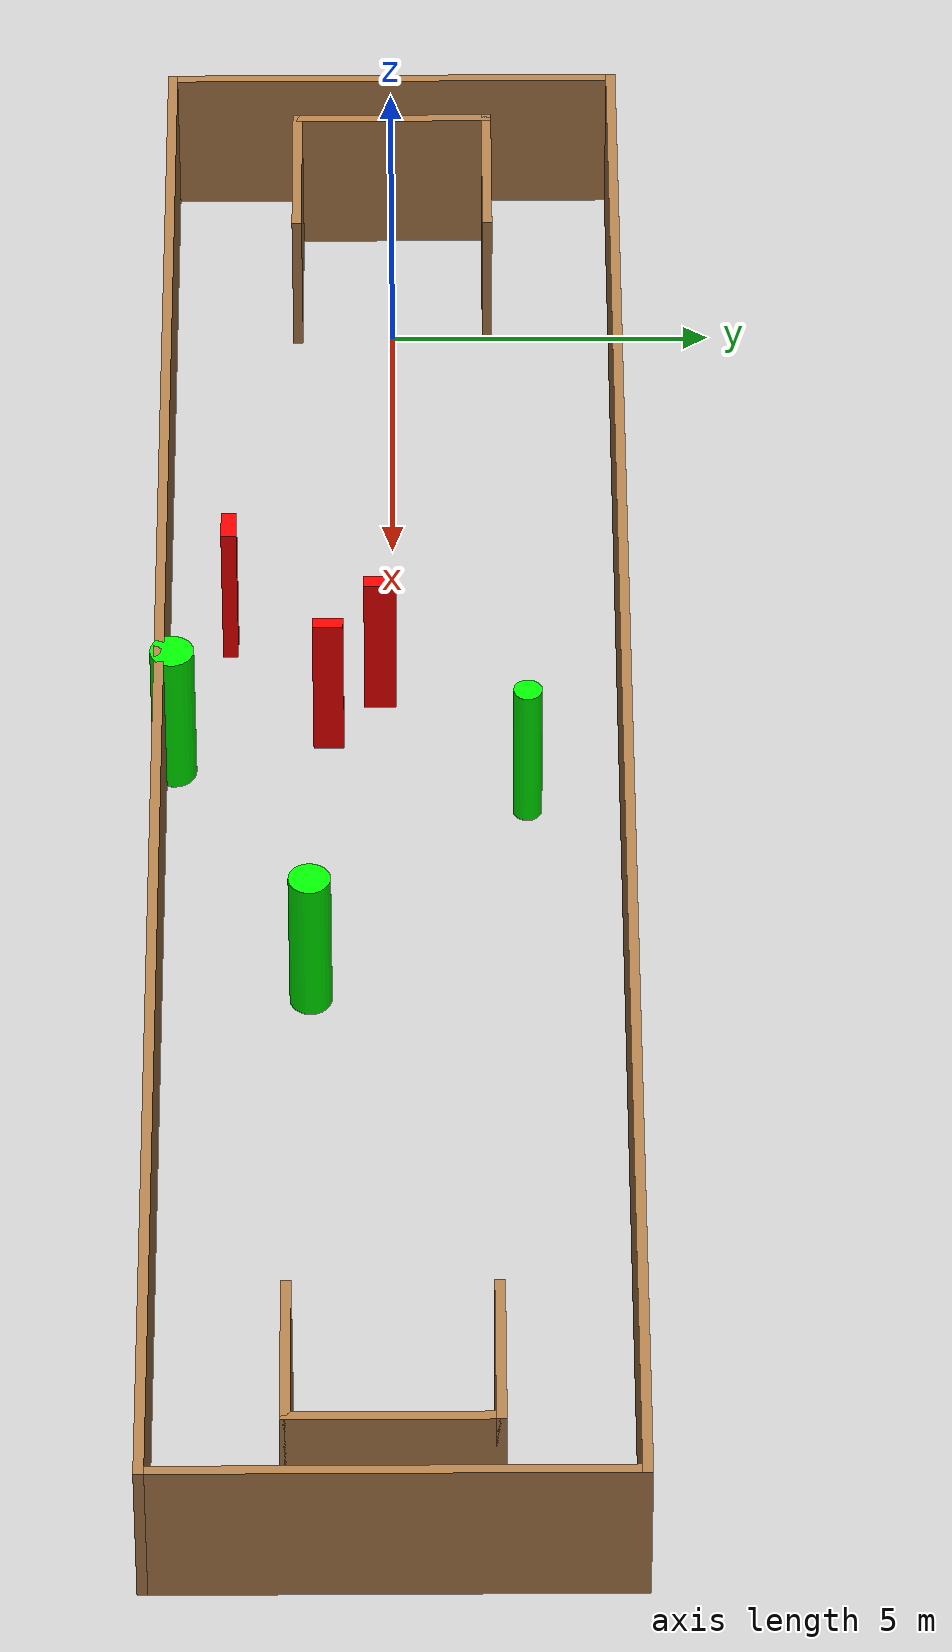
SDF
<sdf version="1.7">
 <world name="default">
  <light name="sun" type="directional">
   <pose>0 0 10 0 -0 0</pose>
   <diffuse>0.8 0.8 0.8 1</diffuse>
   <specular>0.2 0.2 0.2 1</specular>
   <attenuation>
    <range>1000</range>
    <constant>0.9</constant>
    <linear>0.01</linear>
    <quadratic>0.001</quadratic>
   </attenuation>
   <direction>-0.5 0.1 -0.9</direction>
   <spot><inner_angle>0</inner_angle><outer_angle>0</outer_angle><falloff>0</falloff></spot>
  </light>
  <model name="ground_plane">
   <static>1</static>
   <link name="link">
    <collision name="collision">
     <geometry><plane><normal>0 0 1</normal><size>100 100</size></plane></geometry>
     <surface>
      <contact><collide_bitmask>65535</collide_bitmask></contact>
      <friction><ode><mu>100</mu><mu2>50</mu2></ode></friction>
     </surface>
    </collision>
    <visual name="visual">
     <cast_shadows>0</cast_shadows>
     <geometry><plane><normal>0 0 1</normal><size>100 100</size></plane></geometry>
     <material>
      <script><uri>file://media/materials/scripts/gazebo.material</uri><name>Gazebo/Grey</name></script>
     </material>
    </visual>
   </link>
  </model>
  <gravity>0 0 -9.8</gravity>
  <magnetic_field>6e-06 2.3e-05 -4.2e-05</magnetic_field>
  <atmosphere type="adiabatic"/>
  <physics type="ode">
   <max_step_size>0.001</max_step_size>
   <real_time_factor>1</real_time_factor>
   <real_time_update_rate>1000</real_time_update_rate>
  </physics>
  <scene><ambient>0.4 0.4 0.4 1</ambient><background>0.7 0.7 0.7 1</background><shadows>1</shadows></scene>
  <spherical_coordinates>
   <surface_model>EARTH_WGS84</surface_model>
   <latitude_deg>0</latitude_deg>
   <longitude_deg>0</longitude_deg>
   <elevation>0</elevation>
   <heading_deg>0</heading_deg>
  </spherical_coordinates>
  <model name="my_base_walls">
   <link name="Wall_0">
    <collision name="Wall_0_Collision">
     <geometry><box><size>7.15 0.15 2.5</size></box></geometry>
     <pose>0 0 1.25 0 -0 0</pose>
    </collision>
    <visual name="Wall_0_Visual">
     <pose>0 0 1.25 0 -0 0</pose>
     <geometry><box><size>7.15 0.15 2.5</size></box></geometry>
     <material>
      <script><uri>file://media/materials/scripts/gazebo.material</uri><name>Gazebo/Wood</name></script>
      <ambient>1 1 1 1</ambient>
     </material>
     <meta><layer>0</layer></meta>
    </visual>
    <pose>-15 0 0 0 -0 1.5708</pose>
   </link>
   <link name="Wall_10">
    <collision name="Wall_10_Collision">
     <geometry><box><size>2.65 0.15 2.5</size></box></geometry>
     <pose>0 0 1.25 0 -0 0</pose>
    </collision>
    <visual name="Wall_10_Visual">
     <pose>0 0 1.25 0 -0 0</pose>
     <geometry><box><size>2.65 0.15 2.5</size></box></geometry>
     <material>
      <script><uri>file://media/materials/scripts/gazebo.material</uri><name>Gazebo/Wood</name></script>
      <ambient>1 1 1 1</ambient>
     </material>
     <meta><layer>0</layer></meta>
    </visual>
    <pose>-12.75 -1.5 0 0 -0 0</pose>
   </link>
   <link name="Wall_12">
    <collision name="Wall_12_Collision">
     <geometry><box><size>2.65 0.15 2.5</size></box></geometry>
     <pose>0 0 1.25 0 -0 0</pose>
    </collision>
    <visual name="Wall_12_Visual">
     <pose>0 0 1.25 0 -0 0</pose>
     <geometry><box><size>2.65 0.15 2.5</size></box></geometry>
     <material>
      <script><uri>file://media/materials/scripts/gazebo.material</uri><name>Gazebo/Wood</name></script>
      <ambient>1 1 1 1</ambient>
     </material>
     <meta><layer>0</layer></meta>
    </visual>
    <pose>-12.75 1.5 0 0 -0 0</pose>
   </link>
   <link name="Wall_14">
    <collision name="Wall_14_Collision">
     <geometry><box><size>3.15 0.15 2.5</size></box></geometry>
     <pose>0 0 1.25 0 -0 0</pose>
    </collision>
    <visual name="Wall_14_Visual">
     <pose>0 0 1.25 0 -0 0</pose>
     <geometry><box><size>3.15 0.15 2.5</size></box></geometry>
     <material>
      <script><uri>file://media/materials/scripts/gazebo.material</uri><name>Gazebo/Wood</name></script>
      <ambient>1 1 1 1</ambient>
     </material>
     <meta><layer>0</layer></meta>
    </visual>
    <pose>14 0 0 0 -0 -1.5708</pose>
   </link>
   <link name="Wall_15">
    <collision name="Wall_15_Collision">
     <geometry><box><size>2.65 0.15 2.5</size></box></geometry>
     <pose>0 0 1.25 0 -0 0</pose>
    </collision>
    <visual name="Wall_15_Visual">
     <pose>0 0 1.25 0 -0 0</pose>
     <geometry><box><size>2.65 0.15 2.5</size></box></geometry>
     <material>
      <script><uri>file://media/materials/scripts/gazebo.material</uri><name>Gazebo/Wood</name></script>
      <ambient>1 1 1 1</ambient>
     </material>
     <meta><layer>0</layer></meta>
    </visual>
    <pose>12.75 -1.5 0 0 -0 3.14159</pose>
   </link>
   <link name="Wall_17">
    <collision name="Wall_17_Collision">
     <geometry><box><size>2.65 0.15 2.5</size></box></geometry>
     <pose>0 0 1.25 0 -0 0</pose>
    </collision>
    <visual name="Wall_17_Visual">
     <pose>0 0 1.25 0 -0 0</pose>
     <geometry><box><size>2.65 0.15 2.5</size></box></geometry>
     <material>
      <script><uri>file://media/materials/scripts/gazebo.material</uri><name>Gazebo/Wood</name></script>
      <ambient>1 1 1 1</ambient>
     </material>
     <meta><layer>0</layer></meta>
    </visual>
    <pose>12.75 1.5 0 0 -0 3.14159</pose>
   </link>
   <link name="Wall_2">
    <collision name="Wall_2_Collision">
     <geometry><box><size>30.15 0.15 2.5</size></box></geometry>
     <pose>0 0 1.25 0 -0 0</pose>
    </collision>
    <visual name="Wall_2_Visual">
     <pose>0 0 1.25 0 -0 0</pose>
     <geometry><box><size>30.15 0.15 2.5</size></box></geometry>
     <material>
      <script><uri>file://media/materials/scripts/gazebo.material</uri><name>Gazebo/Wood</name></script>
      <ambient>1 1 1 1</ambient>
     </material>
     <meta><layer>0</layer></meta>
    </visual>
    <pose>-0 -3.5 0 0 -0 0</pose>
   </link>
   <link name="Wall_4">
    <collision name="Wall_4_Collision">
     <geometry><box><size>30.15 0.15 2.5</size></box></geometry>
     <pose>0 0 1.25 0 -0 0</pose>
    </collision>
    <visual name="Wall_4_Visual">
     <pose>0 0 1.25 0 -0 0</pose>
     <geometry><box><size>30.15 0.15 2.5</size></box></geometry>
     <material>
      <script><uri>file://media/materials/scripts/gazebo.material</uri><name>Gazebo/Wood</name></script>
      <ambient>1 1 1 1</ambient>
     </material>
     <meta><layer>0</layer></meta>
    </visual>
    <pose>-0 3.5 0 0 -0 0</pose>
   </link>
   <link name="Wall_6">
    <collision name="Wall_6_Collision">
     <geometry><box><size>7.15 0.15 2.5</size></box></geometry>
     <pose>0 0 1.25 0 -0 0</pose>
    </collision>
    <visual name="Wall_6_Visual">
     <pose>0 0 1.25 0 -0 0</pose>
     <geometry><box><size>7.15 0.15 2.5</size></box></geometry>
     <material>
      <script><uri>file://media/materials/scripts/gazebo.material</uri><name>Gazebo/Wood</name></script>
      <ambient>1 1 1 1</ambient>
     </material>
     <meta><layer>0</layer></meta>
    </visual>
    <pose>15 0 0 0 -0 -1.5708</pose>
   </link>
   <link name="Wall_9">
    <collision name="Wall_9_Collision">
     <geometry><box><size>3.15 0.15 2.5</size></box></geometry>
     <pose>0 0 1.25 0 -0 0</pose>
    </collision>
    <visual name="Wall_9_Visual">
     <pose>0 0 1.25 0 -0 0</pose>
     <geometry><box><size>3.15 0.15 2.5</size></box></geometry>
     <material>
      <script><uri>file://media/materials/scripts/gazebo.material</uri><name>Gazebo/Wood</name></script>
      <ambient>1 1 1 1</ambient>
     </material>
     <meta><layer>0</layer></meta>
    </visual>
    <pose>-14 0 0 0 -0 -1.5708</pose>
   </link>
   <static>1</static>
   <pose>11.5 0 0 0 -0 0</pose>
  </model>
  <model name="cylinder1">
   <static>1</static>
   <link name="link">
    <inertial>
     <mass>1</mass>
     <inertia><ixx>0.5</ixx><ixy>0</ixy><ixz>0</ixz><iyy>0.5</iyy><iyz>0</iyz><izz>1</izz></inertia>
    </inertial>
    <collision name="collision">
     <geometry><cylinder><radius>0.3317535878006953</radius><length>2.5</length></cylinder></geometry>
    </collision>
    <visual name="visual">
     <geometry><cylinder><radius>0.3317535878006953</radius><length>2.5</length></cylinder></geometry>
     <material>
      <ambient>0 1 0 1</ambient>
      <diffuse>0 1 0 1</diffuse>
      <specular>0.1 0.1 0.1 1</specular>
      <emissive>0 0 0 0</emissive>
     </material>
    </visual>
   </link>
   <pose>9.968959957116969 -3.3066406423320895 1.25 0 0 0</pose>
  </model>
  <model name="cylinder2">
   <static>1</static>
   <link name="link">
    <inertial>
     <mass>1</mass>
     <inertia><ixx>0.5</ixx><ixy>0</ixy><ixz>0</ixz><iyy>0.5</iyy><iyz>0</iyz><izz>1</izz></inertia>
    </inertial>
    <collision name="collision">
     <geometry><cylinder><radius>0.31341493251472086</radius><length>2.5</length></cylinder></geometry>
    </collision>
    <visual name="visual">
     <geometry><cylinder><radius>0.31341493251472086</radius><length>2.5</length></cylinder></geometry>
     <material>
      <ambient>0 1 0 1</ambient>
      <diffuse>0 1 0 1</diffuse>
      <specular>0.1 0.1 0.1 1</specular>
      <emissive>0 0 0 0</emissive>
     </material>
    </visual>
   </link>
   <pose>14.867718795570715 -1.2176282488265895 1.25 0 0 0</pose>
  </model>
  <model name="cylinder3">
   <static>1</static>
   <link name="link">
    <inertial>
     <mass>1</mass>
     <inertia><ixx>0.5</ixx><ixy>0</ixy><ixz>0</ixz><iyy>0.5</iyy><iyz>0</iyz><izz>1</izz></inertia>
    </inertial>
    <collision name="collision">
     <geometry><cylinder><radius>0.21704602544391405</radius><length>2.5</length></cylinder></geometry>
    </collision>
    <visual name="visual">
     <geometry><cylinder><radius>0.21704602544391405</radius><length>2.5</length></cylinder></geometry>
     <material>
      <ambient>0 1 0 1</ambient>
      <diffuse>0 1 0 1</diffuse>
      <specular>0.1 0.1 0.1 1</specular>
      <emissive>0 0 0 0</emissive>
     </material>
    </visual>
   </link>
   <pose>10.85174386003106 2.024828753698004 1.25 0 0 0</pose>
  </model>
  <model name="box1">
   <static>1</static>
   <link name="link">
    <inertial>
     <mass>1</mass>
     <inertia><ixx>0.083</ixx><ixy>0</ixy><ixz>0</ixz><iyy>0.083</iyy><iyz>0</iyz><izz>0.083</izz></inertia>
    </inertial>
    <collision name="collision">
     <geometry><box><size>0.20524707294237682 0.46297124983284016 2.5</size></box></geometry>
    </collision>
    <visual name="visual">
     <geometry><box><size>0.20524707294237682 0.46297124983284016 2.5</size></box></geometry>
     <material>
      <ambient>1 0 0 1</ambient>
      <diffuse>1 0 0 1</diffuse>
      <specular>0.1 0.1 0.1 1</specular>
      <emissive>0 0 0 0</emissive>
     </material>
    </visual>
    <sensor name="my_contact" type="contact">
     <contact><collision>box_collision</collision><topic>__default_topic__</topic></contact>
    </sensor>
   </link>
   <pose>9.359846772684115 -0.9739063882049415 1.25 0 0 0</pose>
  </model>
  <model name="box2">
   <static>1</static>
   <link name="link">
    <inertial>
     <mass>1</mass>
     <inertia><ixx>0.083</ixx><ixy>0</ixy><ixz>0</ixz><iyy>0.083</iyy><iyz>0</iyz><izz>0.083</izz></inertia>
    </inertial>
    <collision name="collision">
     <geometry><box><size>0.2401749116028883 0.4893784528784149 2.5</size></box></geometry>
    </collision>
    <visual name="visual">
     <geometry><box><size>0.2401749116028883 0.4893784528784149 2.5</size></box></geometry>
     <material>
      <ambient>1 0 0 1</ambient>
      <diffuse>1 0 0 1</diffuse>
      <specular>0.1 0.1 0.1 1</specular>
      <emissive>0 0 0 0</emissive>
     </material>
    </visual>
    <sensor name="my_contact" type="contact">
     <contact><collision>box_collision</collision><topic>__default_topic__</topic></contact>
    </sensor>
   </link>
   <pose>8.437871810529774 -0.1889624919216919 1.25 0 0 0</pose>
  </model>
  <model name="box3">
   <static>1</static>
   <link name="link">
    <inertial>
     <mass>1</mass>
     <inertia><ixx>0.083</ixx><ixy>0</ixy><ixz>0</ixz><iyy>0.083</iyy><iyz>0</iyz><izz>0.083</izz></inertia>
    </inertial>
    <collision name="collision">
     <geometry><box><size>0.526351215436446 0.2324671433270128 2.5</size></box></geometry>
    </collision>
    <visual name="visual">
     <geometry><box><size>0.526351215436446 0.2324671433270128 2.5</size></box></geometry>
     <material>
      <ambient>1 0 0 1</ambient>
      <diffuse>1 0 0 1</diffuse>
      <specular>0.1 0.1 0.1 1</specular>
      <emissive>0 0 0 0</emissive>
     </material>
    </visual>
    <sensor name="my_contact" type="contact">
     <contact><collision>box_collision</collision><topic>__default_topic__</topic></contact>
    </sensor>
   </link>
   <pose>7.153575968308292 -2.4876447342087955 1.25 0 0 0</pose>
  </model>
 </world>
</sdf>
